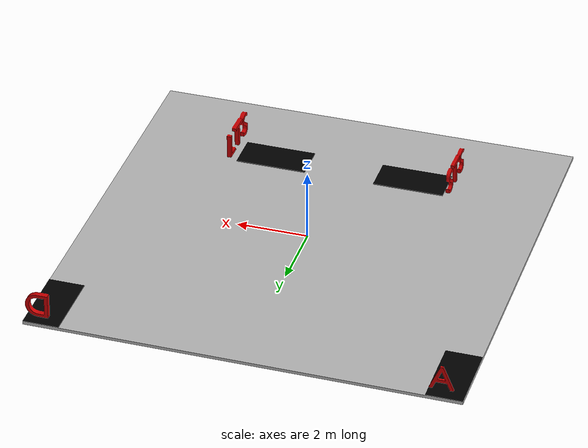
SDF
<?xml version="1.0" ?>
<sdf version="1.6">
  <model name="floor">
    <pose>0 0 0 0 0 0</pose>
    <static>1</static>
    <link name="link">
      <inertial>
        <mass>1</mass>
      </inertial>
      <collision name="collision">
        <geometry>
          <plane>
            <size>12 12</size>
          </plane>
        </geometry>
      </collision>
      <visual name="visual">
        <pose>0 0 0 0 0 0</pose>
        <geometry>
          <mesh>
            <uri>model://floor/meshes/floor.dae</uri>
            <scale>1 1 1</scale>
          </mesh>
        </geometry>
      </visual>
    </link>
  </model>
</sdf>
